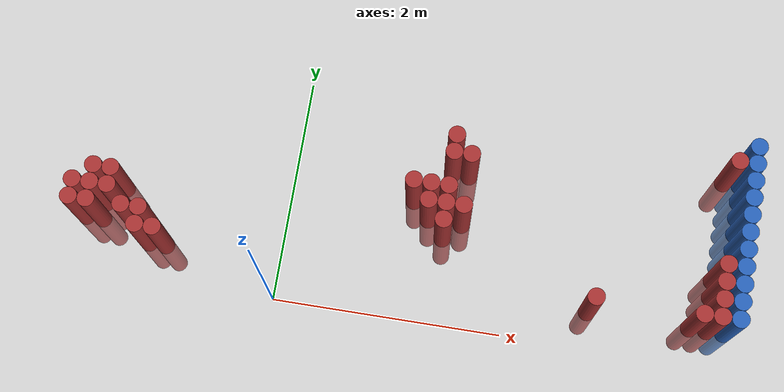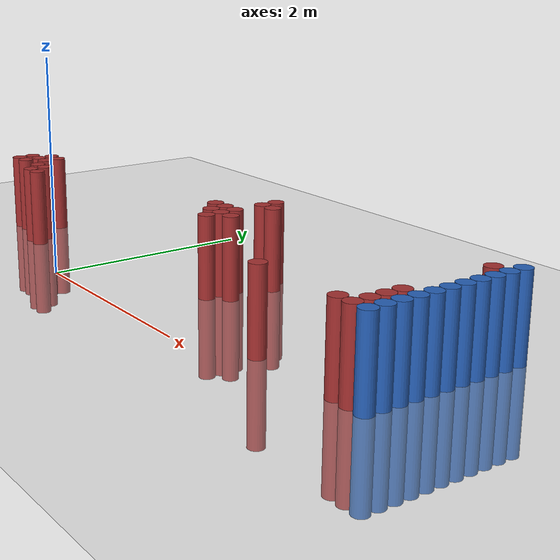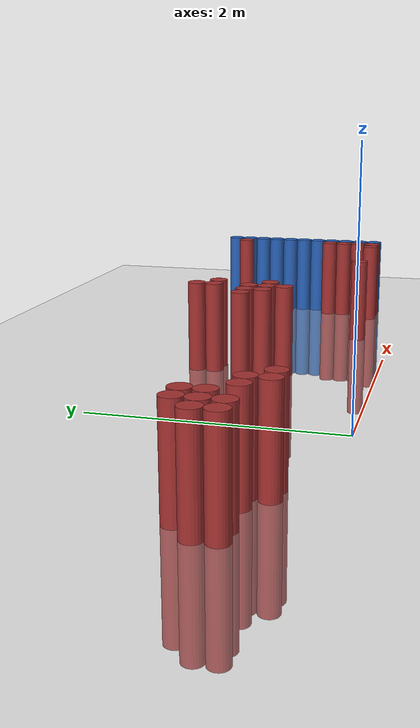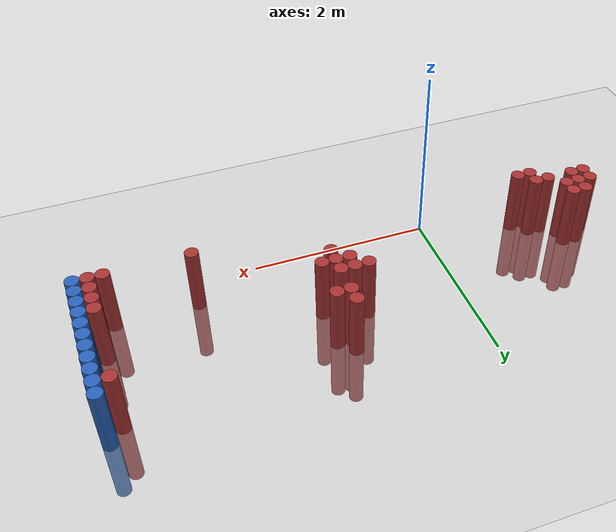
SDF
<sdf version="1.6">
 <world name="default">
  <model name="ground_plane">
   <static>1</static>
   <link name="link">
    <collision name="collision">
     <geometry><plane><normal>0 0 1</normal><size>100 100</size></plane></geometry>
     <surface><friction><ode><mu>100</mu><mu2>50</mu2></ode></friction></surface>
    </collision>
    <visual name="visual">
     <cast_shadows>0</cast_shadows>
     <geometry><plane><normal>0 0 1</normal><size>100 100</size></plane></geometry>
     <material>
      <script><uri>file://media/materials/scripts/gazebo.material</uri><name>Gazebo/Grey</name></script>
     </material>
    </visual>
   </link>
  </model>
  <model name="unit_cylinder_120">
   <static>1</static>
   <pose>3.925000 0.475000 0.000000 0.000000 0.000000 0.000000</pose>
   <link name="link">
    <inertial>
     <mass>1</mass>
     <inertia><ixx>0.145833</ixx><ixy>0</ixy><ixz>0</ixz><iyy>0.145833</iyy><iyz>0</iyz><izz>0.125</izz></inertia>
    </inertial>
    <collision name="collision">
     <geometry><cylinder><radius>0.075000</radius><length>1.5</length></cylinder></geometry>
    </collision>
    <visual name="visual">
     <geometry><cylinder><radius>0.075000</radius><length>1.5</length></cylinder></geometry>
     <material>
      <ambient>0.152000 0.379000 0.720000 1</ambient>
      <diffuse>0.152000 0.379000 0.720000 1</diffuse>
     </material>
     <material>
      <script><name>Gazebo/Grey</name><uri>file://media/materials/scripts/gazebo.material</uri></script>
     </material>
    </visual>
   </link>
  </model>
  <model name="unit_cylinder_122">
   <static>1</static>
   <pose>3.925000 0.625000 0.000000 0.000000 0.000000 0.000000</pose>
   <link name="link">
    <inertial>
     <mass>1</mass>
     <inertia><ixx>0.145833</ixx><ixy>0</ixy><ixz>0</ixz><iyy>0.145833</iyy><iyz>0</iyz><izz>0.125</izz></inertia>
    </inertial>
    <collision name="collision">
     <geometry><cylinder><radius>0.075000</radius><length>1.5</length></cylinder></geometry>
    </collision>
    <visual name="visual">
     <geometry><cylinder><radius>0.075000</radius><length>1.5</length></cylinder></geometry>
     <material>
      <ambient>0.152000 0.379000 0.720000 1</ambient>
      <diffuse>0.152000 0.379000 0.720000 1</diffuse>
     </material>
     <material>
      <script><name>Gazebo/Grey</name><uri>file://media/materials/scripts/gazebo.material</uri></script>
     </material>
    </visual>
   </link>
  </model>
  <model name="unit_cylinder_124">
   <static>1</static>
   <pose>3.925000 0.775000 0.000000 0.000000 0.000000 0.000000</pose>
   <link name="link">
    <inertial>
     <mass>1</mass>
     <inertia><ixx>0.145833</ixx><ixy>0</ixy><ixz>0</ixz><iyy>0.145833</iyy><iyz>0</iyz><izz>0.125</izz></inertia>
    </inertial>
    <collision name="collision">
     <geometry><cylinder><radius>0.075000</radius><length>1.5</length></cylinder></geometry>
    </collision>
    <visual name="visual">
     <geometry><cylinder><radius>0.075000</radius><length>1.5</length></cylinder></geometry>
     <material>
      <ambient>0.152000 0.379000 0.720000 1</ambient>
      <diffuse>0.152000 0.379000 0.720000 1</diffuse>
     </material>
     <material>
      <script><name>Gazebo/Grey</name><uri>file://media/materials/scripts/gazebo.material</uri></script>
     </material>
    </visual>
   </link>
  </model>
  <model name="unit_cylinder_126">
   <static>1</static>
   <pose>3.925000 0.925000 0.000000 0.000000 0.000000 0.000000</pose>
   <link name="link">
    <inertial>
     <mass>1</mass>
     <inertia><ixx>0.145833</ixx><ixy>0</ixy><ixz>0</ixz><iyy>0.145833</iyy><iyz>0</iyz><izz>0.125</izz></inertia>
    </inertial>
    <collision name="collision">
     <geometry><cylinder><radius>0.075000</radius><length>1.5</length></cylinder></geometry>
    </collision>
    <visual name="visual">
     <geometry><cylinder><radius>0.075000</radius><length>1.5</length></cylinder></geometry>
     <material>
      <ambient>0.152000 0.379000 0.720000 1</ambient>
      <diffuse>0.152000 0.379000 0.720000 1</diffuse>
     </material>
     <material>
      <script><name>Gazebo/Grey</name><uri>file://media/materials/scripts/gazebo.material</uri></script>
     </material>
    </visual>
   </link>
  </model>
  <model name="unit_cylinder_128">
   <static>1</static>
   <pose>3.925000 1.075000 0.000000 0.000000 0.000000 0.000000</pose>
   <link name="link">
    <inertial>
     <mass>1</mass>
     <inertia><ixx>0.145833</ixx><ixy>0</ixy><ixz>0</ixz><iyy>0.145833</iyy><iyz>0</iyz><izz>0.125</izz></inertia>
    </inertial>
    <collision name="collision">
     <geometry><cylinder><radius>0.075000</radius><length>1.5</length></cylinder></geometry>
    </collision>
    <visual name="visual">
     <geometry><cylinder><radius>0.075000</radius><length>1.5</length></cylinder></geometry>
     <material>
      <ambient>0.152000 0.379000 0.720000 1</ambient>
      <diffuse>0.152000 0.379000 0.720000 1</diffuse>
     </material>
     <material>
      <script><name>Gazebo/Grey</name><uri>file://media/materials/scripts/gazebo.material</uri></script>
     </material>
    </visual>
   </link>
  </model>
  <model name="unit_cylinder_130">
   <static>1</static>
   <pose>3.925000 1.225000 0.000000 0.000000 0.000000 0.000000</pose>
   <link name="link">
    <inertial>
     <mass>1</mass>
     <inertia><ixx>0.145833</ixx><ixy>0</ixy><ixz>0</ixz><iyy>0.145833</iyy><iyz>0</iyz><izz>0.125</izz></inertia>
    </inertial>
    <collision name="collision">
     <geometry><cylinder><radius>0.075000</radius><length>1.5</length></cylinder></geometry>
    </collision>
    <visual name="visual">
     <geometry><cylinder><radius>0.075000</radius><length>1.5</length></cylinder></geometry>
     <material>
      <ambient>0.152000 0.379000 0.720000 1</ambient>
      <diffuse>0.152000 0.379000 0.720000 1</diffuse>
     </material>
     <material>
      <script><name>Gazebo/Grey</name><uri>file://media/materials/scripts/gazebo.material</uri></script>
     </material>
    </visual>
   </link>
  </model>
  <model name="unit_cylinder_132">
   <static>1</static>
   <pose>3.925000 1.375000 0.000000 0.000000 0.000000 0.000000</pose>
   <link name="link">
    <inertial>
     <mass>1</mass>
     <inertia><ixx>0.145833</ixx><ixy>0</ixy><ixz>0</ixz><iyy>0.145833</iyy><iyz>0</iyz><izz>0.125</izz></inertia>
    </inertial>
    <collision name="collision">
     <geometry><cylinder><radius>0.075000</radius><length>1.5</length></cylinder></geometry>
    </collision>
    <visual name="visual">
     <geometry><cylinder><radius>0.075000</radius><length>1.5</length></cylinder></geometry>
     <material>
      <ambient>0.152000 0.379000 0.720000 1</ambient>
      <diffuse>0.152000 0.379000 0.720000 1</diffuse>
     </material>
     <material>
      <script><name>Gazebo/Grey</name><uri>file://media/materials/scripts/gazebo.material</uri></script>
     </material>
    </visual>
   </link>
  </model>
  <model name="unit_cylinder_134">
   <static>1</static>
   <pose>3.925000 1.525000 0.000000 0.000000 0.000000 0.000000</pose>
   <link name="link">
    <inertial>
     <mass>1</mass>
     <inertia><ixx>0.145833</ixx><ixy>0</ixy><ixz>0</ixz><iyy>0.145833</iyy><iyz>0</iyz><izz>0.125</izz></inertia>
    </inertial>
    <collision name="collision">
     <geometry><cylinder><radius>0.075000</radius><length>1.5</length></cylinder></geometry>
    </collision>
    <visual name="visual">
     <geometry><cylinder><radius>0.075000</radius><length>1.5</length></cylinder></geometry>
     <material>
      <ambient>0.152000 0.379000 0.720000 1</ambient>
      <diffuse>0.152000 0.379000 0.720000 1</diffuse>
     </material>
     <material>
      <script><name>Gazebo/Grey</name><uri>file://media/materials/scripts/gazebo.material</uri></script>
     </material>
    </visual>
   </link>
  </model>
  <model name="unit_cylinder_136">
   <static>1</static>
   <pose>3.925000 1.675000 0.000000 0.000000 0.000000 0.000000</pose>
   <link name="link">
    <inertial>
     <mass>1</mass>
     <inertia><ixx>0.145833</ixx><ixy>0</ixy><ixz>0</ixz><iyy>0.145833</iyy><iyz>0</iyz><izz>0.125</izz></inertia>
    </inertial>
    <collision name="collision">
     <geometry><cylinder><radius>0.075000</radius><length>1.5</length></cylinder></geometry>
    </collision>
    <visual name="visual">
     <geometry><cylinder><radius>0.075000</radius><length>1.5</length></cylinder></geometry>
     <material>
      <ambient>0.152000 0.379000 0.720000 1</ambient>
      <diffuse>0.152000 0.379000 0.720000 1</diffuse>
     </material>
     <material>
      <script><name>Gazebo/Grey</name><uri>file://media/materials/scripts/gazebo.material</uri></script>
     </material>
    </visual>
   </link>
  </model>
  <model name="unit_cylinder_138">
   <static>1</static>
   <pose>3.925000 1.825000 0.000000 0.000000 0.000000 0.000000</pose>
   <link name="link">
    <inertial>
     <mass>1</mass>
     <inertia><ixx>0.145833</ixx><ixy>0</ixy><ixz>0</ixz><iyy>0.145833</iyy><iyz>0</iyz><izz>0.125</izz></inertia>
    </inertial>
    <collision name="collision">
     <geometry><cylinder><radius>0.075000</radius><length>1.5</length></cylinder></geometry>
    </collision>
    <visual name="visual">
     <geometry><cylinder><radius>0.075000</radius><length>1.5</length></cylinder></geometry>
     <material>
      <ambient>0.152000 0.379000 0.720000 1</ambient>
      <diffuse>0.152000 0.379000 0.720000 1</diffuse>
     </material>
     <material>
      <script><name>Gazebo/Grey</name><uri>file://media/materials/scripts/gazebo.material</uri></script>
     </material>
    </visual>
   </link>
  </model>
  <model name="unit_cylinder_282">
   <static>1</static>
   <pose>-1.775000 0.475000 0.000000 0.000000 0.000000 0.000000</pose>
   <link name="link">
    <inertial>
     <mass>1</mass>
     <inertia><ixx>0.145833</ixx><ixy>0</ixy><ixz>0</ixz><iyy>0.145833</iyy><iyz>0</iyz><izz>0.125</izz></inertia>
    </inertial>
    <collision name="collision">
     <geometry><cylinder><radius>0.075000</radius><length>1.5</length></cylinder></geometry>
    </collision>
    <visual name="visual">
     <geometry><cylinder><radius>0.075000</radius><length>1.5</length></cylinder></geometry>
     <material>
      <ambient>0.648000 0.192000 0.192000 1</ambient>
      <diffuse>0.648000 0.192000 0.192000 1</diffuse>
     </material>
     <material>
      <script><name>Gazebo/Grey</name><uri>file://media/materials/scripts/gazebo.material</uri></script>
     </material>
    </visual>
   </link>
  </model>
  <model name="unit_cylinder_283">
   <static>1</static>
   <pose>-1.775000 0.625000 0.000000 0.000000 0.000000 0.000000</pose>
   <link name="link">
    <inertial>
     <mass>1</mass>
     <inertia><ixx>0.145833</ixx><ixy>0</ixy><ixz>0</ixz><iyy>0.145833</iyy><iyz>0</iyz><izz>0.125</izz></inertia>
    </inertial>
    <collision name="collision">
     <geometry><cylinder><radius>0.075000</radius><length>1.5</length></cylinder></geometry>
    </collision>
    <visual name="visual">
     <geometry><cylinder><radius>0.075000</radius><length>1.5</length></cylinder></geometry>
     <material>
      <ambient>0.648000 0.192000 0.192000 1</ambient>
      <diffuse>0.648000 0.192000 0.192000 1</diffuse>
     </material>
     <material>
      <script><name>Gazebo/Grey</name><uri>file://media/materials/scripts/gazebo.material</uri></script>
     </material>
    </visual>
   </link>
  </model>
  <model name="unit_cylinder_284">
   <static>1</static>
   <pose>-1.625000 0.475000 0.000000 0.000000 0.000000 0.000000</pose>
   <link name="link">
    <inertial>
     <mass>1</mass>
     <inertia><ixx>0.145833</ixx><ixy>0</ixy><ixz>0</ixz><iyy>0.145833</iyy><iyz>0</iyz><izz>0.125</izz></inertia>
    </inertial>
    <collision name="collision">
     <geometry><cylinder><radius>0.075000</radius><length>1.5</length></cylinder></geometry>
    </collision>
    <visual name="visual">
     <geometry><cylinder><radius>0.075000</radius><length>1.5</length></cylinder></geometry>
     <material>
      <ambient>0.648000 0.192000 0.192000 1</ambient>
      <diffuse>0.648000 0.192000 0.192000 1</diffuse>
     </material>
     <material>
      <script><name>Gazebo/Grey</name><uri>file://media/materials/scripts/gazebo.material</uri></script>
     </material>
    </visual>
   </link>
  </model>
  <model name="unit_cylinder_285">
   <static>1</static>
   <pose>-1.625000 0.625000 0.000000 0.000000 0.000000 0.000000</pose>
   <link name="link">
    <inertial>
     <mass>1</mass>
     <inertia><ixx>0.145833</ixx><ixy>0</ixy><ixz>0</ixz><iyy>0.145833</iyy><iyz>0</iyz><izz>0.125</izz></inertia>
    </inertial>
    <collision name="collision">
     <geometry><cylinder><radius>0.075000</radius><length>1.5</length></cylinder></geometry>
    </collision>
    <visual name="visual">
     <geometry><cylinder><radius>0.075000</radius><length>1.5</length></cylinder></geometry>
     <material>
      <ambient>0.648000 0.192000 0.192000 1</ambient>
      <diffuse>0.648000 0.192000 0.192000 1</diffuse>
     </material>
     <material>
      <script><name>Gazebo/Grey</name><uri>file://media/materials/scripts/gazebo.material</uri></script>
     </material>
    </visual>
   </link>
  </model>
  <model name="unit_cylinder_286">
   <static>1</static>
   <pose>-1.625000 0.775000 0.000000 0.000000 0.000000 0.000000</pose>
   <link name="link">
    <inertial>
     <mass>1</mass>
     <inertia><ixx>0.145833</ixx><ixy>0</ixy><ixz>0</ixz><iyy>0.145833</iyy><iyz>0</iyz><izz>0.125</izz></inertia>
    </inertial>
    <collision name="collision">
     <geometry><cylinder><radius>0.075000</radius><length>1.5</length></cylinder></geometry>
    </collision>
    <visual name="visual">
     <geometry><cylinder><radius>0.075000</radius><length>1.5</length></cylinder></geometry>
     <material>
      <ambient>0.648000 0.192000 0.192000 1</ambient>
      <diffuse>0.648000 0.192000 0.192000 1</diffuse>
     </material>
     <material>
      <script><name>Gazebo/Grey</name><uri>file://media/materials/scripts/gazebo.material</uri></script>
     </material>
    </visual>
   </link>
  </model>
  <model name="unit_cylinder_289">
   <static>1</static>
   <pose>-1.475000 0.625000 0.000000 0.000000 0.000000 0.000000</pose>
   <link name="link">
    <inertial>
     <mass>1</mass>
     <inertia><ixx>0.145833</ixx><ixy>0</ixy><ixz>0</ixz><iyy>0.145833</iyy><iyz>0</iyz><izz>0.125</izz></inertia>
    </inertial>
    <collision name="collision">
     <geometry><cylinder><radius>0.075000</radius><length>1.5</length></cylinder></geometry>
    </collision>
    <visual name="visual">
     <geometry><cylinder><radius>0.075000</radius><length>1.5</length></cylinder></geometry>
     <material>
      <ambient>0.648000 0.192000 0.192000 1</ambient>
      <diffuse>0.648000 0.192000 0.192000 1</diffuse>
     </material>
     <material>
      <script><name>Gazebo/Grey</name><uri>file://media/materials/scripts/gazebo.material</uri></script>
     </material>
    </visual>
   </link>
  </model>
  <model name="unit_cylinder_290">
   <static>1</static>
   <pose>-1.475000 0.775000 0.000000 0.000000 0.000000 0.000000</pose>
   <link name="link">
    <inertial>
     <mass>1</mass>
     <inertia><ixx>0.145833</ixx><ixy>0</ixy><ixz>0</ixz><iyy>0.145833</iyy><iyz>0</iyz><izz>0.125</izz></inertia>
    </inertial>
    <collision name="collision">
     <geometry><cylinder><radius>0.075000</radius><length>1.5</length></cylinder></geometry>
    </collision>
    <visual name="visual">
     <geometry><cylinder><radius>0.075000</radius><length>1.5</length></cylinder></geometry>
     <material>
      <ambient>0.648000 0.192000 0.192000 1</ambient>
      <diffuse>0.648000 0.192000 0.192000 1</diffuse>
     </material>
     <material>
      <script><name>Gazebo/Grey</name><uri>file://media/materials/scripts/gazebo.material</uri></script>
     </material>
    </visual>
   </link>
  </model>
  <model name="unit_cylinder_295">
   <static>1</static>
   <pose>-1.325000 0.475000 0.000000 0.000000 0.000000 0.000000</pose>
   <link name="link">
    <inertial>
     <mass>1</mass>
     <inertia><ixx>0.145833</ixx><ixy>0</ixy><ixz>0</ixz><iyy>0.145833</iyy><iyz>0</iyz><izz>0.125</izz></inertia>
    </inertial>
    <collision name="collision">
     <geometry><cylinder><radius>0.075000</radius><length>1.5</length></cylinder></geometry>
    </collision>
    <visual name="visual">
     <geometry><cylinder><radius>0.075000</radius><length>1.5</length></cylinder></geometry>
     <material>
      <ambient>0.648000 0.192000 0.192000 1</ambient>
      <diffuse>0.648000 0.192000 0.192000 1</diffuse>
     </material>
     <material>
      <script><name>Gazebo/Grey</name><uri>file://media/materials/scripts/gazebo.material</uri></script>
     </material>
    </visual>
   </link>
  </model>
  <model name="unit_cylinder_297">
   <static>1</static>
   <pose>-1.175000 0.325000 0.000000 0.000000 0.000000 0.000000</pose>
   <link name="link">
    <inertial>
     <mass>1</mass>
     <inertia><ixx>0.145833</ixx><ixy>0</ixy><ixz>0</ixz><iyy>0.145833</iyy><iyz>0</iyz><izz>0.125</izz></inertia>
    </inertial>
    <collision name="collision">
     <geometry><cylinder><radius>0.075000</radius><length>1.5</length></cylinder></geometry>
    </collision>
    <visual name="visual">
     <geometry><cylinder><radius>0.075000</radius><length>1.5</length></cylinder></geometry>
     <material>
      <ambient>0.648000 0.192000 0.192000 1</ambient>
      <diffuse>0.648000 0.192000 0.192000 1</diffuse>
     </material>
     <material>
      <script><name>Gazebo/Grey</name><uri>file://media/materials/scripts/gazebo.material</uri></script>
     </material>
    </visual>
   </link>
  </model>
  <model name="unit_cylinder_298">
   <static>1</static>
   <pose>-1.175000 0.475000 0.000000 0.000000 0.000000 0.000000</pose>
   <link name="link">
    <inertial>
     <mass>1</mass>
     <inertia><ixx>0.145833</ixx><ixy>0</ixy><ixz>0</ixz><iyy>0.145833</iyy><iyz>0</iyz><izz>0.125</izz></inertia>
    </inertial>
    <collision name="collision">
     <geometry><cylinder><radius>0.075000</radius><length>1.5</length></cylinder></geometry>
    </collision>
    <visual name="visual">
     <geometry><cylinder><radius>0.075000</radius><length>1.5</length></cylinder></geometry>
     <material>
      <ambient>0.648000 0.192000 0.192000 1</ambient>
      <diffuse>0.648000 0.192000 0.192000 1</diffuse>
     </material>
     <material>
      <script><name>Gazebo/Grey</name><uri>file://media/materials/scripts/gazebo.material</uri></script>
     </material>
    </visual>
   </link>
  </model>
  <model name="unit_cylinder_299">
   <static>1</static>
   <pose>-1.025000 0.325000 0.000000 0.000000 0.000000 0.000000</pose>
   <link name="link">
    <inertial>
     <mass>1</mass>
     <inertia><ixx>0.145833</ixx><ixy>0</ixy><ixz>0</ixz><iyy>0.145833</iyy><iyz>0</iyz><izz>0.125</izz></inertia>
    </inertial>
    <collision name="collision">
     <geometry><cylinder><radius>0.075000</radius><length>1.5</length></cylinder></geometry>
    </collision>
    <visual name="visual">
     <geometry><cylinder><radius>0.075000</radius><length>1.5</length></cylinder></geometry>
     <material>
      <ambient>0.648000 0.192000 0.192000 1</ambient>
      <diffuse>0.648000 0.192000 0.192000 1</diffuse>
     </material>
     <material>
      <script><name>Gazebo/Grey</name><uri>file://media/materials/scripts/gazebo.material</uri></script>
     </material>
    </visual>
   </link>
  </model>
  <model name="unit_cylinder_318">
   <static>1</static>
   <pose>1.075000 1.075000 0.000000 0.000000 0.000000 0.000000</pose>
   <link name="link">
    <inertial>
     <mass>1</mass>
     <inertia><ixx>0.145833</ixx><ixy>0</ixy><ixz>0</ixz><iyy>0.145833</iyy><iyz>0</iyz><izz>0.125</izz></inertia>
    </inertial>
    <collision name="collision">
     <geometry><cylinder><radius>0.075000</radius><length>1.5</length></cylinder></geometry>
    </collision>
    <visual name="visual">
     <geometry><cylinder><radius>0.075000</radius><length>1.5</length></cylinder></geometry>
     <material>
      <ambient>0.648000 0.192000 0.192000 1</ambient>
      <diffuse>0.648000 0.192000 0.192000 1</diffuse>
     </material>
     <material>
      <script><name>Gazebo/Grey</name><uri>file://media/materials/scripts/gazebo.material</uri></script>
     </material>
    </visual>
   </link>
  </model>
  <model name="unit_cylinder_320">
   <static>1</static>
   <pose>1.225000 0.925000 0.000000 0.000000 0.000000 0.000000</pose>
   <link name="link">
    <inertial>
     <mass>1</mass>
     <inertia><ixx>0.145833</ixx><ixy>0</ixy><ixz>0</ixz><iyy>0.145833</iyy><iyz>0</iyz><izz>0.125</izz></inertia>
    </inertial>
    <collision name="collision">
     <geometry><cylinder><radius>0.075000</radius><length>1.5</length></cylinder></geometry>
    </collision>
    <visual name="visual">
     <geometry><cylinder><radius>0.075000</radius><length>1.5</length></cylinder></geometry>
     <material>
      <ambient>0.648000 0.192000 0.192000 1</ambient>
      <diffuse>0.648000 0.192000 0.192000 1</diffuse>
     </material>
     <material>
      <script><name>Gazebo/Grey</name><uri>file://media/materials/scripts/gazebo.material</uri></script>
     </material>
    </visual>
   </link>
  </model>
  <model name="unit_cylinder_321">
   <static>1</static>
   <pose>1.225000 1.075000 0.000000 0.000000 0.000000 0.000000</pose>
   <link name="link">
    <inertial>
     <mass>1</mass>
     <inertia><ixx>0.145833</ixx><ixy>0</ixy><ixz>0</ixz><iyy>0.145833</iyy><iyz>0</iyz><izz>0.125</izz></inertia>
    </inertial>
    <collision name="collision">
     <geometry><cylinder><radius>0.075000</radius><length>1.5</length></cylinder></geometry>
    </collision>
    <visual name="visual">
     <geometry><cylinder><radius>0.075000</radius><length>1.5</length></cylinder></geometry>
     <material>
      <ambient>0.648000 0.192000 0.192000 1</ambient>
      <diffuse>0.648000 0.192000 0.192000 1</diffuse>
     </material>
     <material>
      <script><name>Gazebo/Grey</name><uri>file://media/materials/scripts/gazebo.material</uri></script>
     </material>
    </visual>
   </link>
  </model>
  <model name="unit_cylinder_322">
   <static>1</static>
   <pose>1.375000 0.775000 0.000000 0.000000 0.000000 0.000000</pose>
   <link name="link">
    <inertial>
     <mass>1</mass>
     <inertia><ixx>0.145833</ixx><ixy>0</ixy><ixz>0</ixz><iyy>0.145833</iyy><iyz>0</iyz><izz>0.125</izz></inertia>
    </inertial>
    <collision name="collision">
     <geometry><cylinder><radius>0.075000</radius><length>1.5</length></cylinder></geometry>
    </collision>
    <visual name="visual">
     <geometry><cylinder><radius>0.075000</radius><length>1.5</length></cylinder></geometry>
     <material>
      <ambient>0.648000 0.192000 0.192000 1</ambient>
      <diffuse>0.648000 0.192000 0.192000 1</diffuse>
     </material>
     <material>
      <script><name>Gazebo/Grey</name><uri>file://media/materials/scripts/gazebo.material</uri></script>
     </material>
    </visual>
   </link>
  </model>
  <model name="unit_cylinder_323">
   <static>1</static>
   <pose>1.375000 0.925000 0.000000 0.000000 0.000000 0.000000</pose>
   <link name="link">
    <inertial>
     <mass>1</mass>
     <inertia><ixx>0.145833</ixx><ixy>0</ixy><ixz>0</ixz><iyy>0.145833</iyy><iyz>0</iyz><izz>0.125</izz></inertia>
    </inertial>
    <collision name="collision">
     <geometry><cylinder><radius>0.075000</radius><length>1.5</length></cylinder></geometry>
    </collision>
    <visual name="visual">
     <geometry><cylinder><radius>0.075000</radius><length>1.5</length></cylinder></geometry>
     <material>
      <ambient>0.648000 0.192000 0.192000 1</ambient>
      <diffuse>0.648000 0.192000 0.192000 1</diffuse>
     </material>
     <material>
      <script><name>Gazebo/Grey</name><uri>file://media/materials/scripts/gazebo.material</uri></script>
     </material>
    </visual>
   </link>
  </model>
  <model name="unit_cylinder_324">
   <static>1</static>
   <pose>1.375000 1.075000 0.000000 0.000000 0.000000 0.000000</pose>
   <link name="link">
    <inertial>
     <mass>1</mass>
     <inertia><ixx>0.145833</ixx><ixy>0</ixy><ixz>0</ixz><iyy>0.145833</iyy><iyz>0</iyz><izz>0.125</izz></inertia>
    </inertial>
    <collision name="collision">
     <geometry><cylinder><radius>0.075000</radius><length>1.5</length></cylinder></geometry>
    </collision>
    <visual name="visual">
     <geometry><cylinder><radius>0.075000</radius><length>1.5</length></cylinder></geometry>
     <material>
      <ambient>0.648000 0.192000 0.192000 1</ambient>
      <diffuse>0.648000 0.192000 0.192000 1</diffuse>
     </material>
     <material>
      <script><name>Gazebo/Grey</name><uri>file://media/materials/scripts/gazebo.material</uri></script>
     </material>
    </visual>
   </link>
  </model>
  <model name="unit_cylinder_325">
   <static>1</static>
   <pose>1.375000 1.375000 0.000000 0.000000 0.000000 0.000000</pose>
   <link name="link">
    <inertial>
     <mass>1</mass>
     <inertia><ixx>0.145833</ixx><ixy>0</ixy><ixz>0</ixz><iyy>0.145833</iyy><iyz>0</iyz><izz>0.125</izz></inertia>
    </inertial>
    <collision name="collision">
     <geometry><cylinder><radius>0.075000</radius><length>1.5</length></cylinder></geometry>
    </collision>
    <visual name="visual">
     <geometry><cylinder><radius>0.075000</radius><length>1.5</length></cylinder></geometry>
     <material>
      <ambient>0.648000 0.192000 0.192000 1</ambient>
      <diffuse>0.648000 0.192000 0.192000 1</diffuse>
     </material>
     <material>
      <script><name>Gazebo/Grey</name><uri>file://media/materials/scripts/gazebo.material</uri></script>
     </material>
    </visual>
   </link>
  </model>
  <model name="unit_cylinder_326">
   <static>1</static>
   <pose>1.375000 1.525000 0.000000 0.000000 0.000000 0.000000</pose>
   <link name="link">
    <inertial>
     <mass>1</mass>
     <inertia><ixx>0.145833</ixx><ixy>0</ixy><ixz>0</ixz><iyy>0.145833</iyy><iyz>0</iyz><izz>0.125</izz></inertia>
    </inertial>
    <collision name="collision">
     <geometry><cylinder><radius>0.075000</radius><length>1.5</length></cylinder></geometry>
    </collision>
    <visual name="visual">
     <geometry><cylinder><radius>0.075000</radius><length>1.5</length></cylinder></geometry>
     <material>
      <ambient>0.648000 0.192000 0.192000 1</ambient>
      <diffuse>0.648000 0.192000 0.192000 1</diffuse>
     </material>
     <material>
      <script><name>Gazebo/Grey</name><uri>file://media/materials/scripts/gazebo.material</uri></script>
     </material>
    </visual>
   </link>
  </model>
  <model name="unit_cylinder_327">
   <static>1</static>
   <pose>1.525000 0.925000 0.000000 0.000000 0.000000 0.000000</pose>
   <link name="link">
    <inertial>
     <mass>1</mass>
     <inertia><ixx>0.145833</ixx><ixy>0</ixy><ixz>0</ixz><iyy>0.145833</iyy><iyz>0</iyz><izz>0.125</izz></inertia>
    </inertial>
    <collision name="collision">
     <geometry><cylinder><radius>0.075000</radius><length>1.5</length></cylinder></geometry>
    </collision>
    <visual name="visual">
     <geometry><cylinder><radius>0.075000</radius><length>1.5</length></cylinder></geometry>
     <material>
      <ambient>0.648000 0.192000 0.192000 1</ambient>
      <diffuse>0.648000 0.192000 0.192000 1</diffuse>
     </material>
     <material>
      <script><name>Gazebo/Grey</name><uri>file://media/materials/scripts/gazebo.material</uri></script>
     </material>
    </visual>
   </link>
  </model>
  <model name="unit_cylinder_328">
   <static>1</static>
   <pose>1.525000 1.375000 0.000000 0.000000 0.000000 0.000000</pose>
   <link name="link">
    <inertial>
     <mass>1</mass>
     <inertia><ixx>0.145833</ixx><ixy>0</ixy><ixz>0</ixz><iyy>0.145833</iyy><iyz>0</iyz><izz>0.125</izz></inertia>
    </inertial>
    <collision name="collision">
     <geometry><cylinder><radius>0.075000</radius><length>1.5</length></cylinder></geometry>
    </collision>
    <visual name="visual">
     <geometry><cylinder><radius>0.075000</radius><length>1.5</length></cylinder></geometry>
     <material>
      <ambient>0.648000 0.192000 0.192000 1</ambient>
      <diffuse>0.648000 0.192000 0.192000 1</diffuse>
     </material>
     <material>
      <script><name>Gazebo/Grey</name><uri>file://media/materials/scripts/gazebo.material</uri></script>
     </material>
    </visual>
   </link>
  </model>
  <model name="unit_cylinder_346">
   <static>1</static>
   <pose>2.725000 0.325000 0.000000 0.000000 0.000000 0.000000</pose>
   <link name="link">
    <inertial>
     <mass>1</mass>
     <inertia><ixx>0.145833</ixx><ixy>0</ixy><ixz>0</ixz><iyy>0.145833</iyy><iyz>0</iyz><izz>0.125</izz></inertia>
    </inertial>
    <collision name="collision">
     <geometry><cylinder><radius>0.075000</radius><length>1.5</length></cylinder></geometry>
    </collision>
    <visual name="visual">
     <geometry><cylinder><radius>0.075000</radius><length>1.5</length></cylinder></geometry>
     <material>
      <ambient>0.648000 0.192000 0.192000 1</ambient>
      <diffuse>0.648000 0.192000 0.192000 1</diffuse>
     </material>
     <material>
      <script><name>Gazebo/Grey</name><uri>file://media/materials/scripts/gazebo.material</uri></script>
     </material>
    </visual>
   </link>
  </model>
  <model name="unit_cylinder_366">
   <static>1</static>
   <pose>3.625000 0.325000 0.000000 0.000000 0.000000 0.000000</pose>
   <link name="link">
    <inertial>
     <mass>1</mass>
     <inertia><ixx>0.145833</ixx><ixy>0</ixy><ixz>0</ixz><iyy>0.145833</iyy><iyz>0</iyz><izz>0.125</izz></inertia>
    </inertial>
    <collision name="collision">
     <geometry><cylinder><radius>0.075000</radius><length>1.5</length></cylinder></geometry>
    </collision>
    <visual name="visual">
     <geometry><cylinder><radius>0.075000</radius><length>1.5</length></cylinder></geometry>
     <material>
      <ambient>0.648000 0.192000 0.192000 1</ambient>
      <diffuse>0.648000 0.192000 0.192000 1</diffuse>
     </material>
     <material>
      <script><name>Gazebo/Grey</name><uri>file://media/materials/scripts/gazebo.material</uri></script>
     </material>
    </visual>
   </link>
  </model>
  <model name="unit_cylinder_375">
   <static>1</static>
   <pose>3.775000 0.325000 0.000000 0.000000 0.000000 0.000000</pose>
   <link name="link">
    <inertial>
     <mass>1</mass>
     <inertia><ixx>0.145833</ixx><ixy>0</ixy><ixz>0</ixz><iyy>0.145833</iyy><iyz>0</iyz><izz>0.125</izz></inertia>
    </inertial>
    <collision name="collision">
     <geometry><cylinder><radius>0.075000</radius><length>1.5</length></cylinder></geometry>
    </collision>
    <visual name="visual">
     <geometry><cylinder><radius>0.075000</radius><length>1.5</length></cylinder></geometry>
     <material>
      <ambient>0.648000 0.192000 0.192000 1</ambient>
      <diffuse>0.648000 0.192000 0.192000 1</diffuse>
     </material>
     <material>
      <script><name>Gazebo/Grey</name><uri>file://media/materials/scripts/gazebo.material</uri></script>
     </material>
    </visual>
   </link>
  </model>
  <model name="unit_cylinder_376">
   <static>1</static>
   <pose>3.775000 0.475000 0.000000 0.000000 0.000000 0.000000</pose>
   <link name="link">
    <inertial>
     <mass>1</mass>
     <inertia><ixx>0.145833</ixx><ixy>0</ixy><ixz>0</ixz><iyy>0.145833</iyy><iyz>0</iyz><izz>0.125</izz></inertia>
    </inertial>
    <collision name="collision">
     <geometry><cylinder><radius>0.075000</radius><length>1.5</length></cylinder></geometry>
    </collision>
    <visual name="visual">
     <geometry><cylinder><radius>0.075000</radius><length>1.5</length></cylinder></geometry>
     <material>
      <ambient>0.648000 0.192000 0.192000 1</ambient>
      <diffuse>0.648000 0.192000 0.192000 1</diffuse>
     </material>
     <material>
      <script><name>Gazebo/Grey</name><uri>file://media/materials/scripts/gazebo.material</uri></script>
     </material>
    </visual>
   </link>
  </model>
  <model name="unit_cylinder_377">
   <static>1</static>
   <pose>3.775000 0.625000 0.000000 0.000000 0.000000 0.000000</pose>
   <link name="link">
    <inertial>
     <mass>1</mass>
     <inertia><ixx>0.145833</ixx><ixy>0</ixy><ixz>0</ixz><iyy>0.145833</iyy><iyz>0</iyz><izz>0.125</izz></inertia>
    </inertial>
    <collision name="collision">
     <geometry><cylinder><radius>0.075000</radius><length>1.5</length></cylinder></geometry>
    </collision>
    <visual name="visual">
     <geometry><cylinder><radius>0.075000</radius><length>1.5</length></cylinder></geometry>
     <material>
      <ambient>0.648000 0.192000 0.192000 1</ambient>
      <diffuse>0.648000 0.192000 0.192000 1</diffuse>
     </material>
     <material>
      <script><name>Gazebo/Grey</name><uri>file://media/materials/scripts/gazebo.material</uri></script>
     </material>
    </visual>
   </link>
  </model>
  <model name="unit_cylinder_378">
   <static>1</static>
   <pose>3.775000 0.775000 0.000000 0.000000 0.000000 0.000000</pose>
   <link name="link">
    <inertial>
     <mass>1</mass>
     <inertia><ixx>0.145833</ixx><ixy>0</ixy><ixz>0</ixz><iyy>0.145833</iyy><iyz>0</iyz><izz>0.125</izz></inertia>
    </inertial>
    <collision name="collision">
     <geometry><cylinder><radius>0.075000</radius><length>1.5</length></cylinder></geometry>
    </collision>
    <visual name="visual">
     <geometry><cylinder><radius>0.075000</radius><length>1.5</length></cylinder></geometry>
     <material>
      <ambient>0.648000 0.192000 0.192000 1</ambient>
      <diffuse>0.648000 0.192000 0.192000 1</diffuse>
     </material>
     <material>
      <script><name>Gazebo/Grey</name><uri>file://media/materials/scripts/gazebo.material</uri></script>
     </material>
    </visual>
   </link>
  </model>
  <model name="unit_cylinder_379">
   <static>1</static>
   <pose>3.775000 1.675000 0.000000 0.000000 0.000000 0.000000</pose>
   <link name="link">
    <inertial>
     <mass>1</mass>
     <inertia><ixx>0.145833</ixx><ixy>0</ixy><ixz>0</ixz><iyy>0.145833</iyy><iyz>0</iyz><izz>0.125</izz></inertia>
    </inertial>
    <collision name="collision">
     <geometry><cylinder><radius>0.075000</radius><length>1.5</length></cylinder></geometry>
    </collision>
    <visual name="visual">
     <geometry><cylinder><radius>0.075000</radius><length>1.5</length></cylinder></geometry>
     <material>
      <ambient>0.648000 0.192000 0.192000 1</ambient>
      <diffuse>0.648000 0.192000 0.192000 1</diffuse>
     </material>
     <material>
      <script><name>Gazebo/Grey</name><uri>file://media/materials/scripts/gazebo.material</uri></script>
     </material>
    </visual>
   </link>
  </model>
  <model name="unit_cylinder_405">
   <static>1</static>
   <pose>3.925000 0.325000 0.000000 0.000000 0.000000 0.000000</pose>
   <link name="link">
    <inertial>
     <mass>1</mass>
     <inertia><ixx>0.145833</ixx><ixy>0</ixy><ixz>0</ixz><iyy>0.145833</iyy><iyz>0</iyz><izz>0.125</izz></inertia>
    </inertial>
    <collision name="collision">
     <geometry><cylinder><radius>0.075000</radius><length>1.5</length></cylinder></geometry>
    </collision>
    <visual name="visual">
     <geometry><cylinder><radius>0.075000</radius><length>1.5</length></cylinder></geometry>
     <material>
      <ambient>0.152000 0.379000 0.720000 1</ambient>
      <diffuse>0.152000 0.379000 0.720000 1</diffuse>
     </material>
     <material>
      <script><name>Gazebo/Grey</name><uri>file://media/materials/scripts/gazebo.material</uri></script>
     </material>
    </visual>
   </link>
  </model>
  <model name="unit_cylinder_406">
   <static>1</static>
   <pose>3.925000 0.475000 0.000000 0.000000 0.000000 0.000000</pose>
   <link name="link">
    <inertial>
     <mass>1</mass>
     <inertia><ixx>0.145833</ixx><ixy>0</ixy><ixz>0</ixz><iyy>0.145833</iyy><iyz>0</iyz><izz>0.125</izz></inertia>
    </inertial>
    <collision name="collision">
     <geometry><cylinder><radius>0.075000</radius><length>1.5</length></cylinder></geometry>
    </collision>
    <visual name="visual">
     <geometry><cylinder><radius>0.075000</radius><length>1.5</length></cylinder></geometry>
     <material>
      <ambient>0.152000 0.379000 0.720000 1</ambient>
      <diffuse>0.152000 0.379000 0.720000 1</diffuse>
     </material>
     <material>
      <script><name>Gazebo/Grey</name><uri>file://media/materials/scripts/gazebo.material</uri></script>
     </material>
    </visual>
   </link>
  </model>
  <model name="unit_cylinder_407">
   <static>1</static>
   <pose>3.925000 0.625000 0.000000 0.000000 0.000000 0.000000</pose>
   <link name="link">
    <inertial>
     <mass>1</mass>
     <inertia><ixx>0.145833</ixx><ixy>0</ixy><ixz>0</ixz><iyy>0.145833</iyy><iyz>0</iyz><izz>0.125</izz></inertia>
    </inertial>
    <collision name="collision">
     <geometry><cylinder><radius>0.075000</radius><length>1.5</length></cylinder></geometry>
    </collision>
    <visual name="visual">
     <geometry><cylinder><radius>0.075000</radius><length>1.5</length></cylinder></geometry>
     <material>
      <ambient>0.152000 0.379000 0.720000 1</ambient>
      <diffuse>0.152000 0.379000 0.720000 1</diffuse>
     </material>
     <material>
      <script><name>Gazebo/Grey</name><uri>file://media/materials/scripts/gazebo.material</uri></script>
     </material>
    </visual>
   </link>
  </model>
  <model name="unit_cylinder_408">
   <static>1</static>
   <pose>3.925000 0.775000 0.000000 0.000000 0.000000 0.000000</pose>
   <link name="link">
    <inertial>
     <mass>1</mass>
     <inertia><ixx>0.145833</ixx><ixy>0</ixy><ixz>0</ixz><iyy>0.145833</iyy><iyz>0</iyz><izz>0.125</izz></inertia>
    </inertial>
    <collision name="collision">
     <geometry><cylinder><radius>0.075000</radius><length>1.5</length></cylinder></geometry>
    </collision>
    <visual name="visual">
     <geometry><cylinder><radius>0.075000</radius><length>1.5</length></cylinder></geometry>
     <material>
      <ambient>0.152000 0.379000 0.720000 1</ambient>
      <diffuse>0.152000 0.379000 0.720000 1</diffuse>
     </material>
     <material>
      <script><name>Gazebo/Grey</name><uri>file://media/materials/scripts/gazebo.material</uri></script>
     </material>
    </visual>
   </link>
  </model>
  <model name="unit_cylinder_409">
   <static>1</static>
   <pose>3.925000 0.925000 0.000000 0.000000 0.000000 0.000000</pose>
   <link name="link">
    <inertial>
     <mass>1</mass>
     <inertia><ixx>0.145833</ixx><ixy>0</ixy><ixz>0</ixz><iyy>0.145833</iyy><iyz>0</iyz><izz>0.125</izz></inertia>
    </inertial>
    <collision name="collision">
     <geometry><cylinder><radius>0.075000</radius><length>1.5</length></cylinder></geometry>
    </collision>
    <visual name="visual">
     <geometry><cylinder><radius>0.075000</radius><length>1.5</length></cylinder></geometry>
     <material>
      <ambient>0.152000 0.379000 0.720000 1</ambient>
      <diffuse>0.152000 0.379000 0.720000 1</diffuse>
     </material>
     <material>
      <script><name>Gazebo/Grey</name><uri>file://media/materials/scripts/gazebo.material</uri></script>
     </material>
    </visual>
   </link>
  </model>
  <model name="unit_cylinder_410">
   <static>1</static>
   <pose>3.925000 1.075000 0.000000 0.000000 0.000000 0.000000</pose>
   <link name="link">
    <inertial>
     <mass>1</mass>
     <inertia><ixx>0.145833</ixx><ixy>0</ixy><ixz>0</ixz><iyy>0.145833</iyy><iyz>0</iyz><izz>0.125</izz></inertia>
    </inertial>
    <collision name="collision">
     <geometry><cylinder><radius>0.075000</radius><length>1.5</length></cylinder></geometry>
    </collision>
    <visual name="visual">
     <geometry><cylinder><radius>0.075000</radius><length>1.5</length></cylinder></geometry>
     <material>
      <ambient>0.152000 0.379000 0.720000 1</ambient>
      <diffuse>0.152000 0.379000 0.720000 1</diffuse>
     </material>
     <material>
      <script><name>Gazebo/Grey</name><uri>file://media/materials/scripts/gazebo.material</uri></script>
     </material>
    </visual>
   </link>
  </model>
  <model name="unit_cylinder_411">
   <static>1</static>
   <pose>3.925000 1.225000 0.000000 0.000000 0.000000 0.000000</pose>
   <link name="link">
    <inertial>
     <mass>1</mass>
     <inertia><ixx>0.145833</ixx><ixy>0</ixy><ixz>0</ixz><iyy>0.145833</iyy><iyz>0</iyz><izz>0.125</izz></inertia>
    </inertial>
    <collision name="collision">
     <geometry><cylinder><radius>0.075000</radius><length>1.5</length></cylinder></geometry>
    </collision>
    <visual name="visual">
     <geometry><cylinder><radius>0.075000</radius><length>1.5</length></cylinder></geometry>
     <material>
      <ambient>0.152000 0.379000 0.720000 1</ambient>
      <diffuse>0.152000 0.379000 0.720000 1</diffuse>
     </material>
     <material>
      <script><name>Gazebo/Grey</name><uri>file://media/materials/scripts/gazebo.material</uri></script>
     </material>
    </visual>
   </link>
  </model>
  <model name="unit_cylinder_412">
   <static>1</static>
   <pose>3.925000 1.375000 0.000000 0.000000 0.000000 0.000000</pose>
   <link name="link">
    <inertial>
     <mass>1</mass>
     <inertia><ixx>0.145833</ixx><ixy>0</ixy><ixz>0</ixz><iyy>0.145833</iyy><iyz>0</iyz><izz>0.125</izz></inertia>
    </inertial>
    <collision name="collision">
     <geometry><cylinder><radius>0.075000</radius><length>1.5</length></cylinder></geometry>
    </collision>
    <visual name="visual">
     <geometry><cylinder><radius>0.075000</radius><length>1.5</length></cylinder></geometry>
     <material>
      <ambient>0.152000 0.379000 0.720000 1</ambient>
      <diffuse>0.152000 0.379000 0.720000 1</diffuse>
     </material>
     <material>
      <script><name>Gazebo/Grey</name><uri>file://media/materials/scripts/gazebo.material</uri></script>
     </material>
    </visual>
   </link>
  </model>
  <model name="unit_cylinder_413">
   <static>1</static>
   <pose>3.925000 1.525000 0.000000 0.000000 0.000000 0.000000</pose>
   <link name="link">
    <inertial>
     <mass>1</mass>
     <inertia><ixx>0.145833</ixx><ixy>0</ixy><ixz>0</ixz><iyy>0.145833</iyy><iyz>0</iyz><izz>0.125</izz></inertia>
    </inertial>
    <collision name="collision">
     <geometry><cylinder><radius>0.075000</radius><length>1.5</length></cylinder></geometry>
    </collision>
    <visual name="visual">
     <geometry><cylinder><radius>0.075000</radius><length>1.5</length></cylinder></geometry>
     <material>
      <ambient>0.152000 0.379000 0.720000 1</ambient>
      <diffuse>0.152000 0.379000 0.720000 1</diffuse>
     </material>
     <material>
      <script><name>Gazebo/Grey</name><uri>file://media/materials/scripts/gazebo.material</uri></script>
     </material>
    </visual>
   </link>
  </model>
  <model name="unit_cylinder_414">
   <static>1</static>
   <pose>3.925000 1.675000 0.000000 0.000000 0.000000 0.000000</pose>
   <link name="link">
    <inertial>
     <mass>1</mass>
     <inertia><ixx>0.145833</ixx><ixy>0</ixy><ixz>0</ixz><iyy>0.145833</iyy><iyz>0</iyz><izz>0.125</izz></inertia>
    </inertial>
    <collision name="collision">
     <geometry><cylinder><radius>0.075000</radius><length>1.5</length></cylinder></geometry>
    </collision>
    <visual name="visual">
     <geometry><cylinder><radius>0.075000</radius><length>1.5</length></cylinder></geometry>
     <material>
      <ambient>0.152000 0.379000 0.720000 1</ambient>
      <diffuse>0.152000 0.379000 0.720000 1</diffuse>
     </material>
     <material>
      <script><name>Gazebo/Grey</name><uri>file://media/materials/scripts/gazebo.material</uri></script>
     </material>
    </visual>
   </link>
  </model>
  <model name="unit_cylinder_415">
   <static>1</static>
   <pose>3.925000 1.825000 0.000000 0.000000 0.000000 0.000000</pose>
   <link name="link">
    <inertial>
     <mass>1</mass>
     <inertia><ixx>0.145833</ixx><ixy>0</ixy><ixz>0</ixz><iyy>0.145833</iyy><iyz>0</iyz><izz>0.125</izz></inertia>
    </inertial>
    <collision name="collision">
     <geometry><cylinder><radius>0.075000</radius><length>1.5</length></cylinder></geometry>
    </collision>
    <visual name="visual">
     <geometry><cylinder><radius>0.075000</radius><length>1.5</length></cylinder></geometry>
     <material>
      <ambient>0.152000 0.379000 0.720000 1</ambient>
      <diffuse>0.152000 0.379000 0.720000 1</diffuse>
     </material>
     <material>
      <script><name>Gazebo/Grey</name><uri>file://media/materials/scripts/gazebo.material</uri></script>
     </material>
    </visual>
   </link>
  </model>
 </world>
</sdf>
